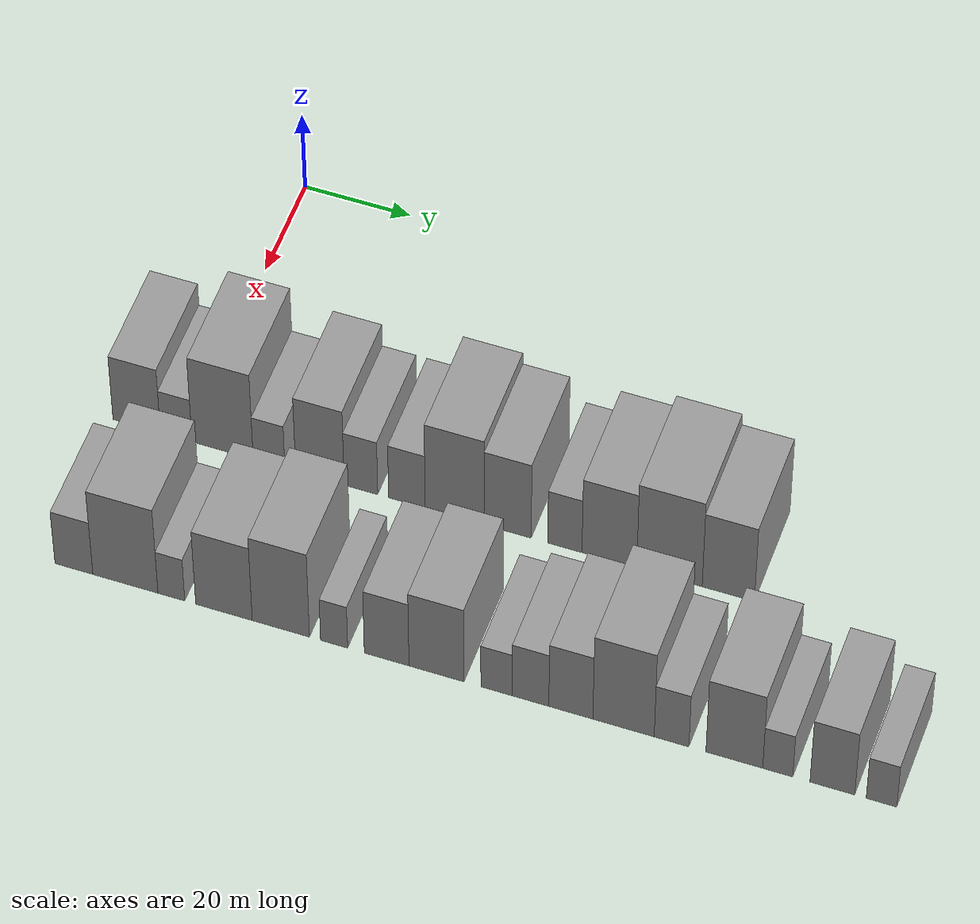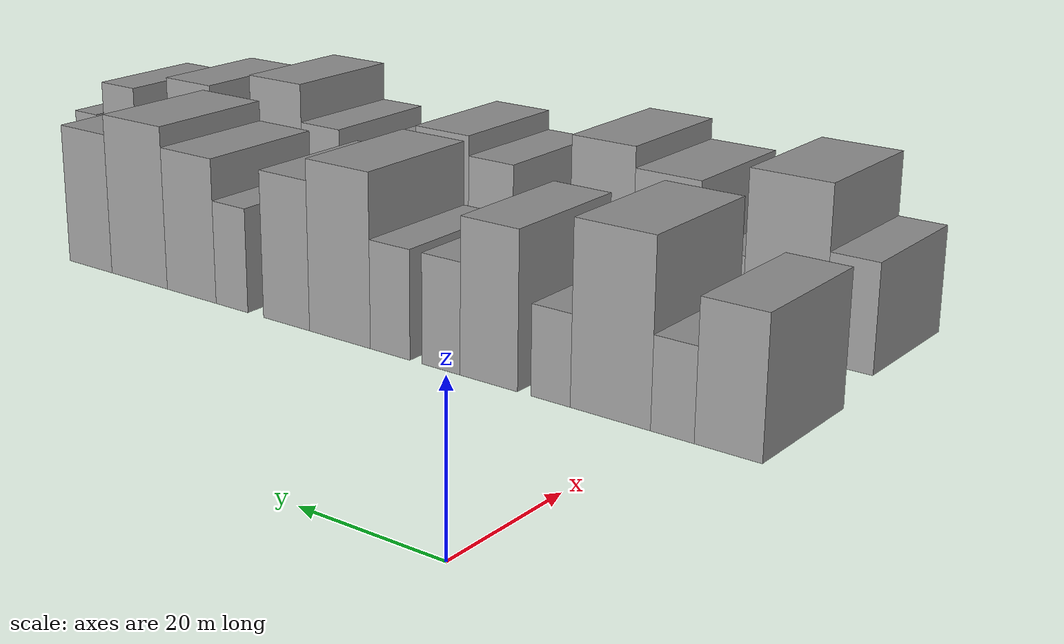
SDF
<sdf version="1.6">
 <world name="default">
  <model name="building_32">
   <static>1</static>
   <pose>50.0000 -9.0547 0 0.000000 0.000000 0.000000</pose>
   <link name="link">
    <pose>0 0 9.00 0 0 0</pose>
    <collision name="collision"><geometry><box><size>20.0000 8.8566 18.0000</size></box></geometry></collision>
    <visual name="visual">
     <cast_shadows>0</cast_shadows>
     <geometry><box><size>20.0000 8.8566 18.0000</size></box></geometry>
     <material>
      <script>
       <uri>model://grey_wall/materials/scripts</uri>
       <uri>model://grey_wall/materials/textures</uri>
       <name>vrc/grey_wall</name>
      </script>
     </material>
    </visual>
   </link>
  </model>
  <model name="building_33">
   <static>1</static>
   <pose>50.0000 -1.6798 0 0.000000 0.000000 0.000000</pose>
   <link name="link">
    <pose>0 0 6.00 0 0 0</pose>
    <collision name="collision"><geometry><box><size>20.0000 5.8933 12.0000</size></box></geometry></collision>
    <visual name="visual">
     <cast_shadows>0</cast_shadows>
     <geometry><box><size>20.0000 5.8933 12.0000</size></box></geometry>
     <material>
      <script>
       <uri>model://grey_wall/materials/scripts</uri>
       <uri>model://grey_wall/materials/textures</uri>
       <name>vrc/grey_wall</name>
      </script>
     </material>
    </visual>
   </link>
  </model>
  <model name="building_34">
   <static>1</static>
   <pose>50.0000 6.9483 0 0.000000 0.000000 0.000000</pose>
   <link name="link">
    <pose>0 0 12.00 0 0 0</pose>
    <collision name="collision"><geometry><box><size>20.0000 11.3630 24.0000</size></box></geometry></collision>
    <visual name="visual">
     <cast_shadows>0</cast_shadows>
     <geometry><box><size>20.0000 11.3630 24.0000</size></box></geometry>
     <material>
      <script>
       <uri>model://grey_wall/materials/scripts</uri>
       <uri>model://grey_wall/materials/textures</uri>
       <name>vrc/grey_wall</name>
      </script>
     </material>
    </visual>
   </link>
  </model>
  <model name="building_35">
   <static>1</static>
   <pose>50.0000 15.5650 0 0.000000 0.000000 0.000000</pose>
   <link name="link">
    <pose>0 0 6.00 0 0 0</pose>
    <collision name="collision"><geometry><box><size>20.0000 5.8705 12.0000</size></box></geometry></collision>
    <visual name="visual">
     <cast_shadows>0</cast_shadows>
     <geometry><box><size>20.0000 5.8705 12.0000</size></box></geometry>
     <material>
      <script>
       <uri>model://grey_wall/materials/scripts</uri>
       <uri>model://grey_wall/materials/textures</uri>
       <name>vrc/grey_wall</name>
      </script>
     </material>
    </visual>
   </link>
  </model>
  <model name="building_36">
   <static>1</static>
   <pose>50.0000 24.9754 0 0.000000 0.000000 0.000000</pose>
   <link name="link">
    <pose>0 0 10.50 0 0 0</pose>
    <collision name="collision"><geometry><box><size>20.0000 8.9502 21.0000</size></box></geometry></collision>
    <visual name="visual">
     <cast_shadows>0</cast_shadows>
     <geometry><box><size>20.0000 8.9502 21.0000</size></box></geometry>
     <material>
      <script>
       <uri>model://grey_wall/materials/scripts</uri>
       <uri>model://grey_wall/materials/textures</uri>
       <name>vrc/grey_wall</name>
      </script>
     </material>
    </visual>
   </link>
  </model>
  <model name="building_37">
   <static>1</static>
   <pose>50.0000 32.5412 0 0.000000 0.000000 0.000000</pose>
   <link name="link">
    <pose>0 0 7.50 0 0 0</pose>
    <collision name="collision"><geometry><box><size>20.0000 6.1814 15.0000</size></box></geometry></collision>
    <visual name="visual">
     <cast_shadows>0</cast_shadows>
     <geometry><box><size>20.0000 6.1814 15.0000</size></box></geometry>
     <material>
      <script>
       <uri>model://grey_wall/materials/scripts</uri>
       <uri>model://grey_wall/materials/textures</uri>
       <name>vrc/grey_wall</name>
      </script>
     </material>
    </visual>
   </link>
  </model>
  <model name="building_38">
   <static>1</static>
   <pose>50.0000 40.9875 0 0.000000 0.000000 0.000000</pose>
   <link name="link">
    <pose>0 0 7.50 0 0 0</pose>
    <collision name="collision"><geometry><box><size>20.0000 6.7112 15.0000</size></box></geometry></collision>
    <visual name="visual">
     <cast_shadows>0</cast_shadows>
     <geometry><box><size>20.0000 6.7112 15.0000</size></box></geometry>
     <material>
      <script>
       <uri>model://grey_wall/materials/scripts</uri>
       <uri>model://grey_wall/materials/textures</uri>
       <name>vrc/grey_wall</name>
      </script>
     </material>
    </visual>
   </link>
  </model>
  <model name="building_39">
   <static>1</static>
   <pose>50.0000 49.7441 0 0.000000 0.000000 0.000000</pose>
   <link name="link">
    <pose>0 0 12.00 0 0 0</pose>
    <collision name="collision"><geometry><box><size>20.0000 10.8022 24.0000</size></box></geometry></collision>
    <visual name="visual">
     <cast_shadows>0</cast_shadows>
     <geometry><box><size>20.0000 10.8022 24.0000</size></box></geometry>
     <material>
      <script>
       <uri>model://grey_wall/materials/scripts</uri>
       <uri>model://grey_wall/materials/textures</uri>
       <name>vrc/grey_wall</name>
      </script>
     </material>
    </visual>
   </link>
  </model>
  <model name="building_40">
   <static>1</static>
   <pose>50.0000 59.4152 0 0.000000 0.000000 0.000000</pose>
   <link name="link">
    <pose>0 0 10.50 0 0 0</pose>
    <collision name="collision"><geometry><box><size>20.0000 8.5400 21.0000</size></box></geometry></collision>
    <visual name="visual">
     <cast_shadows>0</cast_shadows>
     <geometry><box><size>20.0000 8.5400 21.0000</size></box></geometry>
     <material>
      <script>
       <uri>model://grey_wall/materials/scripts</uri>
       <uri>model://grey_wall/materials/textures</uri>
       <name>vrc/grey_wall</name>
      </script>
     </material>
    </visual>
   </link>
  </model>
  <model name="building_41">
   <static>1</static>
   <pose>50.0000 69.7867 0 0.000000 0.000000 0.000000</pose>
   <link name="link">
    <pose>0 0 7.50 0 0 0</pose>
    <collision name="collision"><geometry><box><size>20.0000 6.2029 15.0000</size></box></geometry></collision>
    <visual name="visual">
     <cast_shadows>0</cast_shadows>
     <geometry><box><size>20.0000 6.2029 15.0000</size></box></geometry>
     <material>
      <script>
       <uri>model://grey_wall/materials/scripts</uri>
       <uri>model://grey_wall/materials/textures</uri>
       <name>vrc/grey_wall</name>
      </script>
     </material>
    </visual>
   </link>
  </model>
  <model name="building_42">
   <static>1</static>
   <pose>50.0000 77.8425 0 0.000000 0.000000 0.000000</pose>
   <link name="link">
    <pose>0 0 10.50 0 0 0</pose>
    <collision name="collision"><geometry><box><size>20.0000 9.9086 21.0000</size></box></geometry></collision>
    <visual name="visual">
     <cast_shadows>0</cast_shadows>
     <geometry><box><size>20.0000 9.9086 21.0000</size></box></geometry>
     <material>
      <script>
       <uri>model://grey_wall/materials/scripts</uri>
       <uri>model://grey_wall/materials/textures</uri>
       <name>vrc/grey_wall</name>
      </script>
     </material>
    </visual>
   </link>
  </model>
  <model name="building_43">
   <static>1</static>
   <pose>50.0000 88.6916 0 0.000000 0.000000 0.000000</pose>
   <link name="link">
    <pose>0 0 12.00 0 0 0</pose>
    <collision name="collision"><geometry><box><size>20.0000 11.7896 24.0000</size></box></geometry></collision>
    <visual name="visual">
     <cast_shadows>0</cast_shadows>
     <geometry><box><size>20.0000 11.7896 24.0000</size></box></geometry>
     <material>
      <script>
       <uri>model://grey_wall/materials/scripts</uri>
       <uri>model://grey_wall/materials/textures</uri>
       <name>vrc/grey_wall</name>
      </script>
     </material>
    </visual>
   </link>
  </model>
  <model name="building_44">
   <static>1</static>
   <pose>50.0000 99.2791 0 0.000000 0.000000 0.000000</pose>
   <link name="link">
    <pose>0 0 10.50 0 0 0</pose>
    <collision name="collision"><geometry><box><size>20.0000 9.3855 21.0000</size></box></geometry></collision>
    <visual name="visual">
     <cast_shadows>0</cast_shadows>
     <geometry><box><size>20.0000 9.3855 21.0000</size></box></geometry>
     <material>
      <script>
       <uri>model://grey_wall/materials/scripts</uri>
       <uri>model://grey_wall/materials/textures</uri>
       <name>vrc/grey_wall</name>
      </script>
     </material>
    </visual>
   </link>
  </model>
  <model name="building_92">
   <static>1</static>
   <pose>82.0000 -8.1214 0 0.000000 0.000000 0.000000</pose>
   <link name="link">
    <pose>0 0 7.50 0 0 0</pose>
    <collision name="collision"><geometry><box><size>20.0000 6.9584 15.0000</size></box></geometry></collision>
    <visual name="visual">
     <cast_shadows>0</cast_shadows>
     <geometry><box><size>20.0000 6.9584 15.0000</size></box></geometry>
     <material>
      <script>
       <uri>model://grey_wall/materials/scripts</uri>
       <uri>model://grey_wall/materials/textures</uri>
       <name>vrc/grey_wall</name>
      </script>
     </material>
    </visual>
   </link>
  </model>
  <model name="building_93">
   <static>1</static>
   <pose>82.0000 1.3312 0 0.000000 0.000000 0.000000</pose>
   <link name="link">
    <pose>0 0 12.00 0 0 0</pose>
    <collision name="collision"><geometry><box><size>20.0000 11.9467 24.0000</size></box></geometry></collision>
    <visual name="visual">
     <cast_shadows>0</cast_shadows>
     <geometry><box><size>20.0000 11.9467 24.0000</size></box></geometry>
     <material>
      <script>
       <uri>model://grey_wall/materials/scripts</uri>
       <uri>model://grey_wall/materials/textures</uri>
       <name>vrc/grey_wall</name>
      </script>
     </material>
    </visual>
   </link>
  </model>
  <model name="building_94">
   <static>1</static>
   <pose>82.0000 9.7539 0 0.000000 0.000000 0.000000</pose>
   <link name="link">
    <pose>0 0 6.00 0 0 0</pose>
    <collision name="collision"><geometry><box><size>20.0000 4.8987 12.0000</size></box></geometry></collision>
    <visual name="visual">
     <cast_shadows>0</cast_shadows>
     <geometry><box><size>20.0000 4.8987 12.0000</size></box></geometry>
     <material>
      <script>
       <uri>model://grey_wall/materials/scripts</uri>
       <uri>model://grey_wall/materials/textures</uri>
       <name>vrc/grey_wall</name>
      </script>
     </material>
    </visual>
   </link>
  </model>
  <model name="building_95">
   <static>1</static>
   <pose>82.0000 19.3545 0 0.000000 0.000000 0.000000</pose>
   <link name="link">
    <pose>0 0 10.50 0 0 0</pose>
    <collision name="collision"><geometry><box><size>20.0000 10.3026 21.0000</size></box></geometry></collision>
    <visual name="visual">
     <cast_shadows>0</cast_shadows>
     <geometry><box><size>20.0000 10.3026 21.0000</size></box></geometry>
     <material>
      <script>
       <uri>model://grey_wall/materials/scripts</uri>
       <uri>model://grey_wall/materials/textures</uri>
       <name>vrc/grey_wall</name>
      </script>
     </material>
    </visual>
   </link>
  </model>
  <model name="building_96">
   <static>1</static>
   <pose>82.0000 29.7015 0 0.000000 0.000000 0.000000</pose>
   <link name="link">
    <pose>0 0 12.00 0 0 0</pose>
    <collision name="collision"><geometry><box><size>20.0000 10.3913 24.0000</size></box></geometry></collision>
    <visual name="visual">
     <cast_shadows>0</cast_shadows>
     <geometry><box><size>20.0000 10.3913 24.0000</size></box></geometry>
     <material>
      <script>
       <uri>model://grey_wall/materials/scripts</uri>
       <uri>model://grey_wall/materials/textures</uri>
       <name>vrc/grey_wall</name>
      </script>
     </material>
    </visual>
   </link>
  </model>
  <model name="building_97">
   <static>1</static>
   <pose>82.0000 39.3515 0 0.000000 0.000000 0.000000</pose>
   <link name="link">
    <pose>0 0 6.00 0 0 0</pose>
    <collision name="collision"><geometry><box><size>20.0000 4.9087 12.0000</size></box></geometry></collision>
    <visual name="visual">
     <cast_shadows>0</cast_shadows>
     <geometry><box><size>20.0000 4.9087 12.0000</size></box></geometry>
     <material>
      <script>
       <uri>model://grey_wall/materials/scripts</uri>
       <uri>model://grey_wall/materials/textures</uri>
       <name>vrc/grey_wall</name>
      </script>
     </material>
    </visual>
   </link>
  </model>
  <model name="building_98">
   <static>1</static>
   <pose>82.0000 48.8264 0 0.000000 0.000000 0.000000</pose>
   <link name="link">
    <pose>0 0 9.00 0 0 0</pose>
    <collision name="collision"><geometry><box><size>20.0000 8.0411 18.0000</size></box></geometry></collision>
    <visual name="visual">
     <cast_shadows>0</cast_shadows>
     <geometry><box><size>20.0000 8.0411 18.0000</size></box></geometry>
     <material>
      <script>
       <uri>model://grey_wall/materials/scripts</uri>
       <uri>model://grey_wall/materials/textures</uri>
       <name>vrc/grey_wall</name>
      </script>
     </material>
    </visual>
   </link>
  </model>
  <model name="building_99">
   <static>1</static>
   <pose>82.0000 57.7939 0 0.000000 0.000000 0.000000</pose>
   <link name="link">
    <pose>0 0 10.50 0 0 0</pose>
    <collision name="collision"><geometry><box><size>20.0000 9.8940 21.0000</size></box></geometry></collision>
    <visual name="visual">
     <cast_shadows>0</cast_shadows>
     <geometry><box><size>20.0000 9.8940 21.0000</size></box></geometry>
     <material>
      <script>
       <uri>model://grey_wall/materials/scripts</uri>
       <uri>model://grey_wall/materials/textures</uri>
       <name>vrc/grey_wall</name>
      </script>
     </material>
    </visual>
   </link>
  </model>
  <model name="building_100">
   <static>1</static>
   <pose>82.0000 68.5317 0 0.000000 0.000000 0.000000</pose>
   <link name="link">
    <pose>0 0 6.00 0 0 0</pose>
    <collision name="collision"><geometry><box><size>20.0000 5.5816 12.0000</size></box></geometry></collision>
    <visual name="visual">
     <cast_shadows>0</cast_shadows>
     <geometry><box><size>20.0000 5.5816 12.0000</size></box></geometry>
     <material>
      <script>
       <uri>model://grey_wall/materials/scripts</uri>
       <uri>model://grey_wall/materials/textures</uri>
       <name>vrc/grey_wall</name>
      </script>
     </material>
    </visual>
   </link>
  </model>
  <model name="building_101">
   <static>1</static>
   <pose>82.0000 74.5952 0 0.000000 0.000000 0.000000</pose>
   <link name="link">
    <pose>0 0 7.50 0 0 0</pose>
    <collision name="collision"><geometry><box><size>20.0000 6.5453 15.0000</size></box></geometry></collision>
    <visual name="visual">
     <cast_shadows>0</cast_shadows>
     <geometry><box><size>20.0000 6.5453 15.0000</size></box></geometry>
     <material>
      <script>
       <uri>model://grey_wall/materials/scripts</uri>
       <uri>model://grey_wall/materials/textures</uri>
       <name>vrc/grey_wall</name>
      </script>
     </material>
    </visual>
   </link>
  </model>
  <model name="building_102">
   <static>1</static>
   <pose>82.0000 81.7835 0 0.000000 0.000000 0.000000</pose>
   <link name="link">
    <pose>0 0 9.00 0 0 0</pose>
    <collision name="collision"><geometry><box><size>20.0000 7.8313 18.0000</size></box></geometry></collision>
    <visual name="visual">
     <cast_shadows>0</cast_shadows>
     <geometry><box><size>20.0000 7.8313 18.0000</size></box></geometry>
     <material>
      <script>
       <uri>model://grey_wall/materials/scripts</uri>
       <uri>model://grey_wall/materials/textures</uri>
       <name>vrc/grey_wall</name>
      </script>
     </material>
    </visual>
   </link>
  </model>
  <model name="building_103">
   <static>1</static>
   <pose>82.0000 91.1404 0 0.000000 0.000000 0.000000</pose>
   <link name="link">
    <pose>0 0 12.00 0 0 0</pose>
    <collision name="collision"><geometry><box><size>20.0000 10.8824 24.0000</size></box></geometry></collision>
    <visual name="visual">
     <cast_shadows>0</cast_shadows>
     <geometry><box><size>20.0000 10.8824 24.0000</size></box></geometry>
     <material>
      <script>
       <uri>model://grey_wall/materials/scripts</uri>
       <uri>model://grey_wall/materials/textures</uri>
       <name>vrc/grey_wall</name>
      </script>
     </material>
    </visual>
   </link>
  </model>
  <model name="building_104">
   <static>1</static>
   <pose>82.0000 99.6464 0 0.000000 0.000000 0.000000</pose>
   <link name="link">
    <pose>0 0 7.50 0 0 0</pose>
    <collision name="collision"><geometry><box><size>20.0000 6.1297 15.0000</size></box></geometry></collision>
    <visual name="visual">
     <cast_shadows>0</cast_shadows>
     <geometry><box><size>20.0000 6.1297 15.0000</size></box></geometry>
     <material>
      <script>
       <uri>model://grey_wall/materials/scripts</uri>
       <uri>model://grey_wall/materials/textures</uri>
       <name>vrc/grey_wall</name>
      </script>
     </material>
    </visual>
   </link>
  </model>
  <model name="building_105">
   <static>1</static>
   <pose>82.0000 110.7050 0 0.000000 0.000000 0.000000</pose>
   <link name="link">
    <pose>0 0 10.50 0 0 0</pose>
    <collision name="collision"><geometry><box><size>20.0000 9.9876 21.0000</size></box></geometry></collision>
    <visual name="visual">
     <cast_shadows>0</cast_shadows>
     <geometry><box><size>20.0000 9.9876 21.0000</size></box></geometry>
     <material>
      <script>
       <uri>model://grey_wall/materials/scripts</uri>
       <uri>model://grey_wall/materials/textures</uri>
       <name>vrc/grey_wall</name>
      </script>
     </material>
    </visual>
   </link>
  </model>
  <model name="building_106">
   <static>1</static>
   <pose>82.0000 118.3395 0 0.000000 0.000000 0.000000</pose>
   <link name="link">
    <pose>0 0 6.00 0 0 0</pose>
    <collision name="collision"><geometry><box><size>20.0000 5.2813 12.0000</size></box></geometry></collision>
    <visual name="visual">
     <cast_shadows>0</cast_shadows>
     <geometry><box><size>20.0000 5.2813 12.0000</size></box></geometry>
     <material>
      <script>
       <uri>model://grey_wall/materials/scripts</uri>
       <uri>model://grey_wall/materials/textures</uri>
       <name>vrc/grey_wall</name>
      </script>
     </material>
    </visual>
   </link>
  </model>
  <model name="building_107">
   <static>1</static>
   <pose>82.0000 127.8945 0 0.000000 0.000000 0.000000</pose>
   <link name="link">
    <pose>0 0 9.00 0 0 0</pose>
    <collision name="collision"><geometry><box><size>20.0000 7.8286 18.0000</size></box></geometry></collision>
    <visual name="visual">
     <cast_shadows>0</cast_shadows>
     <geometry><box><size>20.0000 7.8286 18.0000</size></box></geometry>
     <material>
      <script>
       <uri>model://grey_wall/materials/scripts</uri>
       <uri>model://grey_wall/materials/textures</uri>
       <name>vrc/grey_wall</name>
      </script>
     </material>
    </visual>
   </link>
  </model>
  <model name="building_108">
   <static>1</static>
   <pose>82.0000 136.4734 0 0.000000 0.000000 0.000000</pose>
   <link name="link">
    <pose>0 0 6.00 0 0 0</pose>
    <collision name="collision"><geometry><box><size>20.0000 5.3293 12.0000</size></box></geometry></collision>
    <visual name="visual">
     <cast_shadows>0</cast_shadows>
     <geometry><box><size>20.0000 5.3293 12.0000</size></box></geometry>
     <material>
      <script>
       <uri>model://grey_wall/materials/scripts</uri>
       <uri>model://grey_wall/materials/textures</uri>
       <name>vrc/grey_wall</name>
      </script>
     </material>
    </visual>
   </link>
  </model>
 </world>
</sdf>
